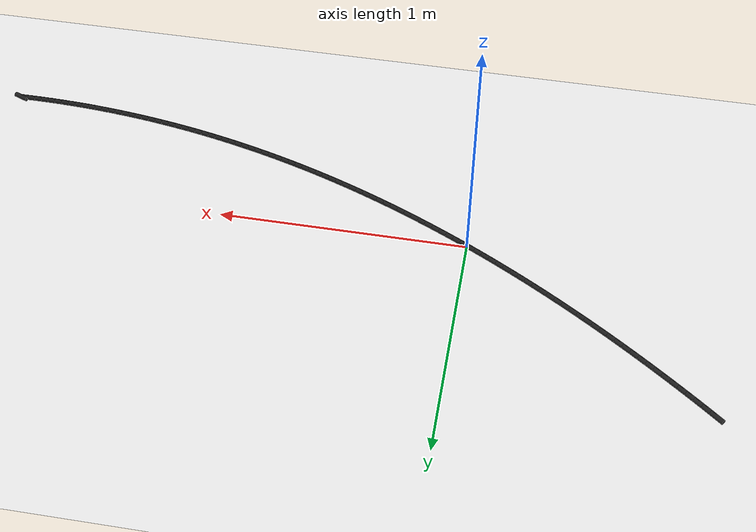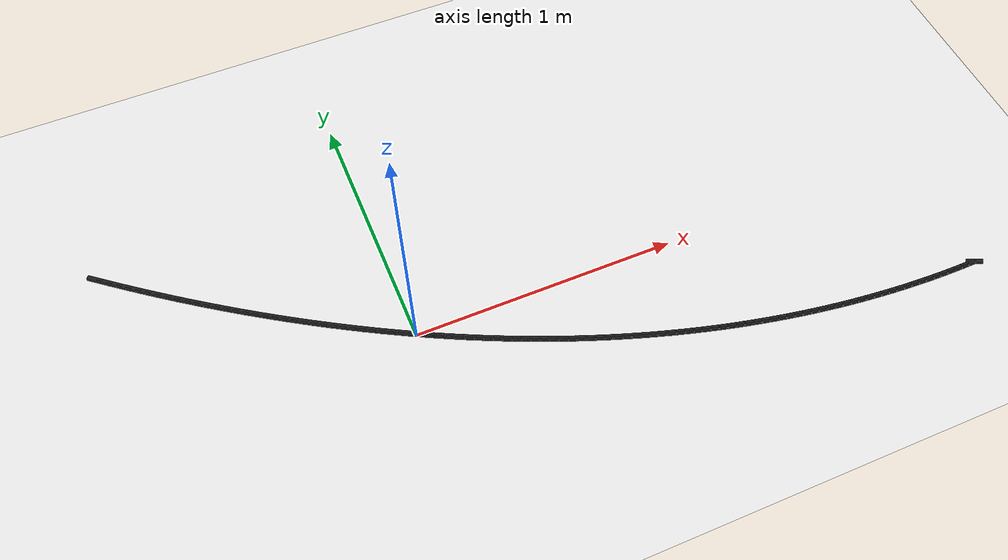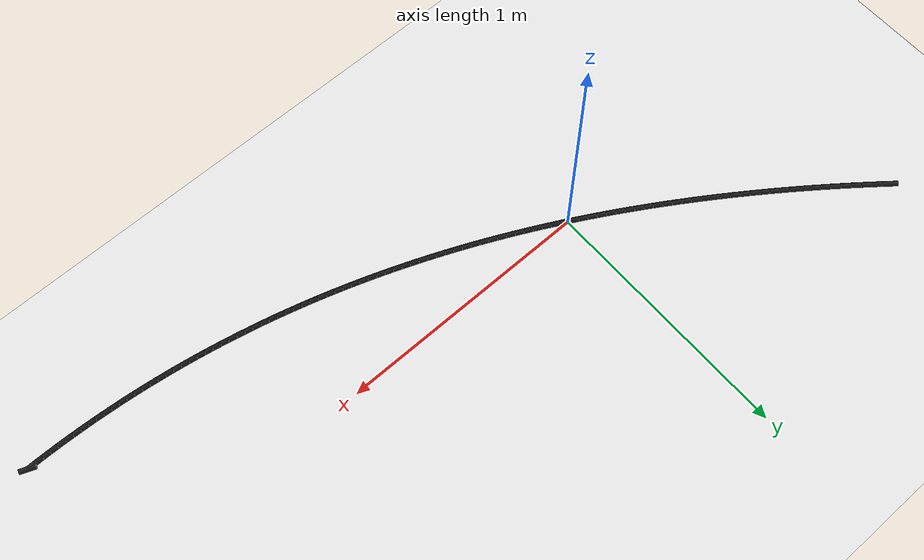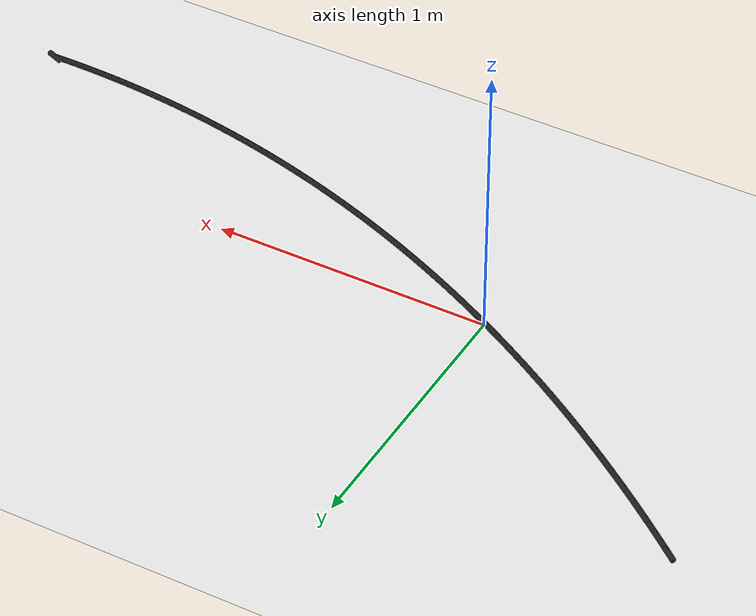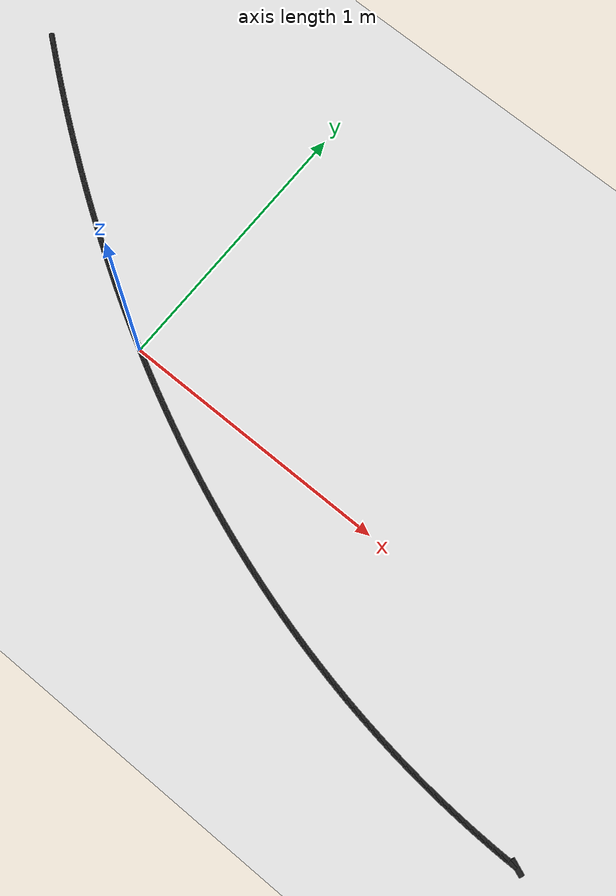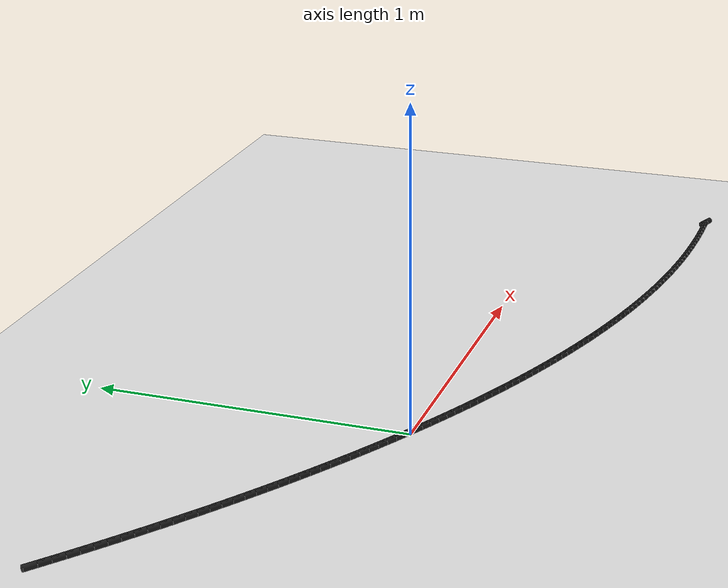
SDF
<sdf version="1.6">
 <world name="default">
  <light name="sun" type="directional">
   <pose>0 0 10 0 -0 0</pose>
   <diffuse>0.8 0.8 0.8 1</diffuse>
   <specular>0.2 0.2 0.2 1</specular>
   <attenuation>
    <range>1000</range>
    <constant>0.9</constant>
    <linear>0.01</linear>
    <quadratic>0.001</quadratic>
   </attenuation>
   <direction>-0.5 0.1 -0.9</direction>
  </light>
  <model name="ground_plane">
   <static>1</static>
   <link name="link">
    <collision name="collision">
     <geometry><plane><normal>0 0 1</normal><size>100 100</size></plane></geometry>
     <surface><friction><ode><mu>100</mu><mu2>50</mu2></ode></friction></surface>
    </collision>
    <visual name="visual">
     <cast_shadows>0</cast_shadows>
     <geometry><plane><normal>0 0 1</normal><size>100 100</size></plane></geometry>
     <material>
      <script><uri>file://media/materials/scripts/gazebo.material</uri><name>Gazebo/WhiteGlow</name></script>
     </material>
    </visual>
   </link>
  </model>
  <gravity>0 0 -9.8</gravity>
  <magnetic_field>6e-06 2.3e-05 -4.2e-05</magnetic_field>
  <atmosphere type="adiabatic"/>
  <physics name="default_physics" default="0" type="ode">
   <max_step_size>0.001</max_step_size>
   <real_time_factor>1</real_time_factor>
   <real_time_update_rate>1000</real_time_update_rate>
  </physics>
  <scene><ambient>1 1 1 1</ambient><background>1 1 1 1</background><shadows>0</shadows></scene>
  <spherical_coordinates>
   <surface_model>EARTH_WGS84</surface_model>
   <latitude_deg>0</latitude_deg>
   <longitude_deg>0</longitude_deg>
   <elevation>0</elevation>
   <heading_deg>0</heading_deg>
  </spherical_coordinates>
  <model name="line">
   <link name="link_0">
    <pose>-1.0 0.6769877856537887 0.01 0 1.57 -0.6814657097463741</pose>
    <collision name="collision">
     <geometry><cylinder><radius>0.01</radius><length>0.06</length></cylinder></geometry>
    </collision>
    <visual name="visual">
     <material>
      <script><name>Gazebo/Black</name><uri>file://media/materials/scripts/gazebo.material</uri></script>
     </material>
     <geometry><cylinder><radius>0.01</radius><length>0.06</length></cylinder></geometry>
    </visual>
   </link>
   <link name="link_1">
    <pose>-0.9696969696969697 0.6524093480892471 0.01 0 1.57 -0.6763894642166145</pose>
    <collision name="collision">
     <geometry><cylinder><radius>0.01</radius><length>0.06</length></cylinder></geometry>
    </collision>
    <visual name="visual">
     <material>
      <script><name>Gazebo/Black</name><uri>file://media/materials/scripts/gazebo.material</uri></script>
     </material>
     <geometry><cylinder><radius>0.01</radius><length>0.06</length></cylinder></geometry>
    </visual>
   </link>
   <link name="link_2">
    <pose>-0.9393939393939394 0.6280848890360238 0.01 0 1.57 -0.6712715104003601</pose>
    <collision name="collision">
     <geometry><cylinder><radius>0.01</radius><length>0.06</length></cylinder></geometry>
    </collision>
    <visual name="visual">
     <material>
      <script><name>Gazebo/Black</name><uri>file://media/materials/scripts/gazebo.material</uri></script>
     </material>
     <geometry><cylinder><radius>0.01</radius><length>0.06</length></cylinder></geometry>
    </visual>
   </link>
   <link name="link_3">
    <pose>-0.9090909090909091 0.6040144084941188 0.01 0 1.57 -0.6661116035770661</pose>
    <collision name="collision">
     <geometry><cylinder><radius>0.01</radius><length>0.06</length></cylinder></geometry>
    </collision>
    <visual name="visual">
     <material>
      <script><name>Gazebo/Black</name><uri>file://media/materials/scripts/gazebo.material</uri></script>
     </material>
     <geometry><cylinder><radius>0.01</radius><length>0.06</length></cylinder></geometry>
    </visual>
   </link>
   <link name="link_4">
    <pose>-0.8787878787878788 0.5801979064635321 0.01 0 1.57 -0.6609095039338627</pose>
    <collision name="collision">
     <geometry><cylinder><radius>0.01</radius><length>0.06</length></cylinder></geometry>
    </collision>
    <visual name="visual">
     <material>
      <script><name>Gazebo/Black</name><uri>file://media/materials/scripts/gazebo.material</uri></script>
     </material>
     <geometry><cylinder><radius>0.01</radius><length>0.06</length></cylinder></geometry>
    </visual>
   </link>
   <link name="link_5">
    <pose>-0.8484848484848485 0.5566353829442638 0.01 0 1.57 -0.655664976854781</pose>
    <collision name="collision">
     <geometry><cylinder><radius>0.01</radius><length>0.06</length></cylinder></geometry>
    </collision>
    <visual name="visual">
     <material>
      <script><name>Gazebo/Black</name><uri>file://media/materials/scripts/gazebo.material</uri></script>
     </material>
     <geometry><cylinder><radius>0.01</radius><length>0.06</length></cylinder></geometry>
    </visual>
   </link>
   <link name="link_6">
    <pose>-0.8181818181818181 0.533326837936314 0.01 0 1.57 -0.6503777932173327</pose>
    <collision name="collision">
     <geometry><cylinder><radius>0.01</radius><length>0.06</length></cylinder></geometry>
    </collision>
    <visual name="visual">
     <material>
      <script><name>Gazebo/Black</name><uri>file://media/materials/scripts/gazebo.material</uri></script>
     </material>
     <geometry><cylinder><radius>0.01</radius><length>0.06</length></cylinder></geometry>
    </visual>
   </link>
   <link name="link_7">
    <pose>-0.7878787878787878 0.5102722714396821 0.01 0 1.57 -0.6450477296964477</pose>
    <collision name="collision">
     <geometry><cylinder><radius>0.01</radius><length>0.06</length></cylinder></geometry>
    </collision>
    <visual name="visual">
     <material>
      <script><name>Gazebo/Black</name><uri>file://media/materials/scripts/gazebo.material</uri></script>
     </material>
     <geometry><cylinder><radius>0.01</radius><length>0.06</length></cylinder></geometry>
    </visual>
   </link>
   <link name="link_8">
    <pose>-0.7575757575757576 0.4874716834543691 0.01 0 1.57 -0.6396745690758942</pose>
    <collision name="collision">
     <geometry><cylinder><radius>0.01</radius><length>0.06</length></cylinder></geometry>
    </collision>
    <visual name="visual">
     <material>
      <script><name>Gazebo/Black</name><uri>file://media/materials/scripts/gazebo.material</uri></script>
     </material>
     <geometry><cylinder><radius>0.01</radius><length>0.06</length></cylinder></geometry>
    </visual>
   </link>
   <link name="link_9">
    <pose>-0.7272727272727273 0.4649250739803742 0.01 0 1.57 -0.6342581005667693</pose>
    <collision name="collision">
     <geometry><cylinder><radius>0.01</radius><length>0.06</length></cylinder></geometry>
    </collision>
    <visual name="visual">
     <material>
      <script><name>Gazebo/Black</name><uri>file://media/materials/scripts/gazebo.material</uri></script>
     </material>
     <geometry><cylinder><radius>0.01</radius><length>0.06</length></cylinder></geometry>
    </visual>
   </link>
   <link name="link_10">
    <pose>-0.696969696969697 0.44263244301769766 0.01 0 1.57 -0.6287981201333864</pose>
    <collision name="collision">
     <geometry><cylinder><radius>0.01</radius><length>0.06</length></cylinder></geometry>
    </collision>
    <visual name="visual">
     <material>
      <script><name>Gazebo/Black</name><uri>file://media/materials/scripts/gazebo.material</uri></script>
     </material>
     <geometry><cylinder><radius>0.01</radius><length>0.06</length></cylinder></geometry>
    </visual>
   </link>
   <link name="link_11">
    <pose>-0.6666666666666666 0.4205937905663393 0.01 0 1.57 -0.6232944308261517</pose>
    <collision name="collision">
     <geometry><cylinder><radius>0.01</radius><length>0.06</length></cylinder></geometry>
    </collision>
    <visual name="visual">
     <material>
      <script><name>Gazebo/Black</name><uri>file://media/materials/scripts/gazebo.material</uri></script>
     </material>
     <geometry><cylinder><radius>0.01</radius><length>0.06</length></cylinder></geometry>
    </visual>
   </link>
   <link name="link_12">
    <pose>-0.6363636363636364 0.3988091166262994 0.01 0 1.57 -0.617746843121511</pose>
    <collision name="collision">
     <geometry><cylinder><radius>0.01</radius><length>0.06</length></cylinder></geometry>
    </collision>
    <visual name="visual">
     <material>
      <script><name>Gazebo/Black</name><uri>file://media/materials/scripts/gazebo.material</uri></script>
     </material>
     <geometry><cylinder><radius>0.01</radius><length>0.06</length></cylinder></geometry>
    </visual>
   </link>
   <link name="link_13">
    <pose>-0.6060606060606061 0.377278421197578 0.01 0 1.57 -0.6121551752687135</pose>
    <collision name="collision">
     <geometry><cylinder><radius>0.01</radius><length>0.06</length></cylinder></geometry>
    </collision>
    <visual name="visual">
     <material>
      <script><name>Gazebo/Black</name><uri>file://media/materials/scripts/gazebo.material</uri></script>
     </material>
     <geometry><cylinder><radius>0.01</radius><length>0.06</length></cylinder></geometry>
    </visual>
   </link>
   <link name="link_14">
    <pose>-0.5757575757575757 0.3560017042801747 0.01 0 1.57 -0.606519253643287</pose>
    <collision name="collision">
     <geometry><cylinder><radius>0.01</radius><length>0.06</length></cylinder></geometry>
    </collision>
    <visual name="visual">
     <material>
      <script><name>Gazebo/Black</name><uri>file://media/materials/scripts/gazebo.material</uri></script>
     </material>
     <geometry><cylinder><radius>0.01</radius><length>0.06</length></cylinder></geometry>
    </visual>
   </link>
   <link name="link_15">
    <pose>-0.5454545454545454 0.33497896587408993 0.01 0 1.57 -0.6008389131070832</pose>
    <collision name="collision">
     <geometry><cylinder><radius>0.01</radius><length>0.06</length></cylinder></geometry>
    </collision>
    <visual name="visual">
     <material>
      <script><name>Gazebo/Black</name><uri>file://media/materials/scripts/gazebo.material</uri></script>
     </material>
     <geometry><cylinder><radius>0.01</radius><length>0.06</length></cylinder></geometry>
    </visual>
   </link>
   <link name="link_16">
    <pose>-0.5151515151515151 0.3142102059793234 0.01 0 1.57 -0.5951139973745827</pose>
    <collision name="collision">
     <geometry><cylinder><radius>0.01</radius><length>0.06</length></cylinder></geometry>
    </collision>
    <visual name="visual">
     <material>
      <script><name>Gazebo/Black</name><uri>file://media/materials/scripts/gazebo.material</uri></script>
     </material>
     <geometry><cylinder><radius>0.01</radius><length>0.06</length></cylinder></geometry>
    </visual>
   </link>
   <link name="link_17">
    <pose>-0.48484848484848486 0.2936954245958754 0.01 0 1.57 -0.5893443593853769</pose>
    <collision name="collision">
     <geometry><cylinder><radius>0.01</radius><length>0.06</length></cylinder></geometry>
    </collision>
    <visual name="visual">
     <material>
      <script><name>Gazebo/Black</name><uri>file://media/materials/scripts/gazebo.material</uri></script>
     </material>
     <geometry><cylinder><radius>0.01</radius><length>0.06</length></cylinder></geometry>
    </visual>
   </link>
   <link name="link_18">
    <pose>-0.4545454545454546 0.27343462172374555 0.01 0 1.57 -0.5835298616824176</pose>
    <collision name="collision">
     <geometry><cylinder><radius>0.01</radius><length>0.06</length></cylinder></geometry>
    </collision>
    <visual name="visual">
     <material>
      <script><name>Gazebo/Black</name><uri>file://media/materials/scripts/gazebo.material</uri></script>
     </material>
     <geometry><cylinder><radius>0.01</radius><length>0.06</length></cylinder></geometry>
    </visual>
   </link>
   <link name="link_19">
    <pose>-0.4242424242424242 0.2534277973629341 0.01 0 1.57 -0.5776703767959271</pose>
    <collision name="collision">
     <geometry><cylinder><radius>0.01</radius><length>0.06</length></cylinder></geometry>
    </collision>
    <visual name="visual">
     <material>
      <script><name>Gazebo/Black</name><uri>file://media/materials/scripts/gazebo.material</uri></script>
     </material>
     <geometry><cylinder><radius>0.01</radius><length>0.06</length></cylinder></geometry>
    </visual>
   </link>
   <link name="link_20">
    <pose>-0.3939393939393939 0.23367495151344098 0.01 0 1.57 -0.571765787632499</pose>
    <collision name="collision">
     <geometry><cylinder><radius>0.01</radius><length>0.06</length></cylinder></geometry>
    </collision>
    <visual name="visual">
     <material>
      <script><name>Gazebo/Black</name><uri>file://media/materials/scripts/gazebo.material</uri></script>
     </material>
     <geometry><cylinder><radius>0.01</radius><length>0.06</length></cylinder></geometry>
    </visual>
   </link>
   <link name="link_21">
    <pose>-0.36363636363636365 0.21417608417526623 0.01 0 1.57 -0.5658159878691927</pose>
    <collision name="collision">
     <geometry><cylinder><radius>0.01</radius><length>0.06</length></cylinder></geometry>
    </collision>
    <visual name="visual">
     <material>
      <script><name>Gazebo/Black</name><uri>file://media/materials/scripts/gazebo.material</uri></script>
     </material>
     <geometry><cylinder><radius>0.01</radius><length>0.06</length></cylinder></geometry>
    </visual>
   </link>
   <link name="link_22">
    <pose>-0.33333333333333326 0.19493119534840972 0.01 0 1.57 -0.5598208823521679</pose>
    <collision name="collision">
     <geometry><cylinder><radius>0.01</radius><length>0.06</length></cylinder></geometry>
    </collision>
    <visual name="visual">
     <material>
      <script><name>Gazebo/Black</name><uri>file://media/materials/scripts/gazebo.material</uri></script>
     </material>
     <geometry><cylinder><radius>0.01</radius><length>0.06</length></cylinder></geometry>
    </visual>
   </link>
   <link name="link_23">
    <pose>-0.303030303030303 0.17594028503287162 0.01 0 1.57 -0.5537803874995251</pose>
    <collision name="collision">
     <geometry><cylinder><radius>0.01</radius><length>0.06</length></cylinder></geometry>
    </collision>
    <visual name="visual">
     <material>
      <script><name>Gazebo/Black</name><uri>file://media/materials/scripts/gazebo.material</uri></script>
     </material>
     <geometry><cylinder><radius>0.01</radius><length>0.06</length></cylinder></geometry>
    </visual>
   </link>
   <link name="link_24">
    <pose>-0.2727272727272727 0.15720335322865192 0.01 0 1.57 -0.5476944317079042</pose>
    <collision name="collision">
     <geometry><cylinder><radius>0.01</radius><length>0.06</length></cylinder></geometry>
    </collision>
    <visual name="visual">
     <material>
      <script><name>Gazebo/Black</name><uri>file://media/materials/scripts/gazebo.material</uri></script>
     </material>
     <geometry><cylinder><radius>0.01</radius><length>0.06</length></cylinder></geometry>
    </visual>
   </link>
   <link name="link_25">
    <pose>-0.24242424242424243 0.13872039993575055 0.01 0 1.57 -0.5415629557623854</pose>
    <collision name="collision">
     <geometry><cylinder><radius>0.01</radius><length>0.06</length></cylinder></geometry>
    </collision>
    <visual name="visual">
     <material>
      <script><name>Gazebo/Black</name><uri>file://media/materials/scripts/gazebo.material</uri></script>
     </material>
     <geometry><cylinder><radius>0.01</radius><length>0.06</length></cylinder></geometry>
    </visual>
   </link>
   <link name="link_26">
    <pose>-0.21212121212121215 0.12049142515416755 0.01 0 1.57 -0.5353859132492357</pose>
    <collision name="collision">
     <geometry><cylinder><radius>0.01</radius><length>0.06</length></cylinder></geometry>
    </collision>
    <visual name="visual">
     <material>
      <script><name>Gazebo/Black</name><uri>file://media/materials/scripts/gazebo.material</uri></script>
     </material>
     <geometry><cylinder><radius>0.01</radius><length>0.06</length></cylinder></geometry>
    </visual>
   </link>
   <link name="link_27">
    <pose>-0.18181818181818177 0.10251642888390282 0.01 0 1.57 -0.5291632709709504</pose>
    <collision name="collision">
     <geometry><cylinder><radius>0.01</radius><length>0.06</length></cylinder></geometry>
    </collision>
    <visual name="visual">
     <material>
      <script><name>Gazebo/Black</name><uri>file://media/materials/scripts/gazebo.material</uri></script>
     </material>
     <geometry><cylinder><radius>0.01</radius><length>0.06</length></cylinder></geometry>
    </visual>
   </link>
   <link name="link_28">
    <pose>-0.1515151515151515 0.08479541112495653 0.01 0 1.57 -0.5228950093630763</pose>
    <collision name="collision">
     <geometry><cylinder><radius>0.01</radius><length>0.06</length></cylinder></geometry>
    </collision>
    <visual name="visual">
     <material>
      <script><name>Gazebo/Black</name><uri>file://media/materials/scripts/gazebo.material</uri></script>
     </material>
     <geometry><cylinder><radius>0.01</radius><length>0.06</length></cylinder></geometry>
    </visual>
   </link>
   <link name="link_29">
    <pose>-0.12121212121212122 0.06732837187732851 0.01 0 1.57 -0.5165811229121897</pose>
    <collision name="collision">
     <geometry><cylinder><radius>0.01</radius><length>0.06</length></cylinder></geometry>
    </collision>
    <visual name="visual">
     <material>
      <script><name>Gazebo/Black</name><uri>file://media/materials/scripts/gazebo.material</uri></script>
     </material>
     <geometry><cylinder><radius>0.01</radius><length>0.06</length></cylinder></geometry>
    </visual>
   </link>
   <link name="link_30">
    <pose>-0.09090909090909083 0.05011531114101881 0.01 0 1.57 -0.5102216205744743</pose>
    <collision name="collision">
     <geometry><cylinder><radius>0.01</radius><length>0.06</length></cylinder></geometry>
    </collision>
    <visual name="visual">
     <material>
      <script><name>Gazebo/Black</name><uri>file://media/materials/scripts/gazebo.material</uri></script>
     </material>
     <geometry><cylinder><radius>0.01</radius><length>0.06</length></cylinder></geometry>
    </visual>
   </link>
   <link name="link_31">
    <pose>-0.06060606060606055 0.03315622891602757 0.01 0 1.57 -0.5038165261941924</pose>
    <collision name="collision">
     <geometry><cylinder><radius>0.01</radius><length>0.06</length></cylinder></geometry>
    </collision>
    <visual name="visual">
     <material>
      <script><name>Gazebo/Black</name><uri>file://media/materials/scripts/gazebo.material</uri></script>
     </material>
     <geometry><cylinder><radius>0.01</radius><length>0.06</length></cylinder></geometry>
    </visual>
   </link>
   <link name="link_32">
    <pose>-0.030303030303030276 0.016451125202354595 0.01 0 1.57 -0.49736587892138584</pose>
    <collision name="collision">
     <geometry><cylinder><radius>0.01</radius><length>0.06</length></cylinder></geometry>
    </collision>
    <visual name="visual">
     <material>
      <script><name>Gazebo/Black</name><uri>file://media/materials/scripts/gazebo.material</uri></script>
     </material>
     <geometry><cylinder><radius>0.01</radius><length>0.06</length></cylinder></geometry>
    </visual>
   </link>
   <link name="link_33">
    <pose>0.0 -6.938893903907228e-18 0.01 0 1.57 -0.4908697336281277</pose>
    <collision name="collision">
     <geometry><cylinder><radius>0.01</radius><length>0.06</length></cylinder></geometry>
    </collision>
    <visual name="visual">
     <material>
      <script><name>Gazebo/Black</name><uri>file://media/materials/scripts/gazebo.material</uri></script>
     </material>
     <geometry><cylinder><radius>0.01</radius><length>0.06</length></cylinder></geometry>
    </visual>
   </link>
   <link name="link_34">
    <pose>0.030303030303030276 -0.01619714669103626 0.01 0 1.57 -0.4843281613225084</pose>
    <collision name="collision">
     <geometry><cylinder><radius>0.01</radius><length>0.06</length></cylinder></geometry>
    </collision>
    <visual name="visual">
     <material>
      <script><name>Gazebo/Black</name><uri>file://media/materials/scripts/gazebo.material</uri></script>
     </material>
     <geometry><cylinder><radius>0.01</radius><length>0.06</length></cylinder></geometry>
    </visual>
   </link>
   <link name="link_35">
    <pose>0.06060606060606055 -0.03214031487075414 0.01 0 1.57 -0.4777412495596345</pose>
    <collision name="collision">
     <geometry><cylinder><radius>0.01</radius><length>0.06</length></cylinder></geometry>
    </collision>
    <visual name="visual">
     <material>
      <script><name>Gazebo/Black</name><uri>file://media/materials/scripts/gazebo.material</uri></script>
     </material>
     <geometry><cylinder><radius>0.01</radius><length>0.06</length></cylinder></geometry>
    </visual>
   </link>
   <link name="link_36">
    <pose>0.09090909090909083 -0.04782950453915372 0.01 0 1.57 -0.4711091028487813</pose>
    <collision name="collision">
     <geometry><cylinder><radius>0.01</radius><length>0.06</length></cylinder></geometry>
    </collision>
    <visual name="visual">
     <material>
      <script><name>Gazebo/Black</name><uri>file://media/materials/scripts/gazebo.material</uri></script>
     </material>
     <geometry><cylinder><radius>0.01</radius><length>0.06</length></cylinder></geometry>
    </visual>
   </link>
   <link name="link_37">
    <pose>0.12121212121212133 -0.06326471569623507 0.01 0 1.57 -0.4644318430558918</pose>
    <collision name="collision">
     <geometry><cylinder><radius>0.01</radius><length>0.06</length></cylinder></geometry>
    </collision>
    <visual name="visual">
     <material>
      <script><name>Gazebo/Black</name><uri>file://media/materials/scripts/gazebo.material</uri></script>
     </material>
     <geometry><cylinder><radius>0.01</radius><length>0.06</length></cylinder></geometry>
    </visual>
   </link>
   <link name="link_38">
    <pose>0.1515151515151516 -0.07844594834199795 0.01 0 1.57 -0.4577096098005149</pose>
    <collision name="collision">
     <geometry><cylinder><radius>0.01</radius><length>0.06</length></cylinder></geometry>
    </collision>
    <visual name="visual">
     <material>
      <script><name>Gazebo/Black</name><uri>file://media/materials/scripts/gazebo.material</uri></script>
     </material>
     <geometry><cylinder><radius>0.01</radius><length>0.06</length></cylinder></geometry>
    </visual>
   </link>
   <link name="link_39">
    <pose>0.18181818181818188 -0.09337320247644254 0.01 0 1.57 -0.4509425608462761</pose>
    <collision name="collision">
     <geometry><cylinder><radius>0.01</radius><length>0.06</length></cylinder></geometry>
    </collision>
    <visual name="visual">
     <material>
      <script><name>Gazebo/Black</name><uri>file://media/materials/scripts/gazebo.material</uri></script>
     </material>
     <geometry><cylinder><radius>0.01</radius><length>0.06</length></cylinder></geometry>
    </visual>
   </link>
   <link name="link_40">
    <pose>0.21212121212121215 -0.10804647809956863 0.01 0 1.57 -0.4441308724840019</pose>
    <collision name="collision">
     <geometry><cylinder><radius>0.01</radius><length>0.06</length></cylinder></geometry>
    </collision>
    <visual name="visual">
     <material>
      <script><name>Gazebo/Black</name><uri>file://media/materials/scripts/gazebo.material</uri></script>
     </material>
     <geometry><cylinder><radius>0.01</radius><length>0.06</length></cylinder></geometry>
    </visual>
   </link>
   <link name="link_41">
    <pose>0.24242424242424243 -0.12246577521137655 0.01 0 1.57 -0.43727473990640203</pose>
    <collision name="collision">
     <geometry><cylinder><radius>0.01</radius><length>0.06</length></cylinder></geometry>
    </collision>
    <visual name="visual">
     <material>
      <script><name>Gazebo/Black</name><uri>file://media/materials/scripts/gazebo.material</uri></script>
     </material>
     <geometry><cylinder><radius>0.01</radius><length>0.06</length></cylinder></geometry>
    </visual>
   </link>
   <link name="link_42">
    <pose>0.2727272727272727 -0.136631093811866 0.01 0 1.57 -0.43037437757352404</pose>
    <collision name="collision">
     <geometry><cylinder><radius>0.01</radius><length>0.06</length></cylinder></geometry>
    </collision>
    <visual name="visual">
     <material>
      <script><name>Gazebo/Black</name><uri>file://media/materials/scripts/gazebo.material</uri></script>
     </material>
     <geometry><cylinder><radius>0.01</radius><length>0.06</length></cylinder></geometry>
    </visual>
   </link>
   <link name="link_43">
    <pose>0.303030303030303 -0.1505424339010371 0.01 0 1.57 -0.4234300195677518</pose>
    <collision name="collision">
     <geometry><cylinder><radius>0.01</radius><length>0.06</length></cylinder></geometry>
    </collision>
    <visual name="visual">
     <material>
      <script><name>Gazebo/Black</name><uri>file://media/materials/scripts/gazebo.material</uri></script>
     </material>
     <geometry><cylinder><radius>0.01</radius><length>0.06</length></cylinder></geometry>
    </visual>
   </link>
   <link name="link_44">
    <pose>0.3333333333333335 -0.16419979547889008 0.01 0 1.57 -0.4164419199374636</pose>
    <collision name="collision">
     <geometry><cylinder><radius>0.01</radius><length>0.06</length></cylinder></geometry>
    </collision>
    <visual name="visual">
     <material>
      <script><name>Gazebo/Black</name><uri>file://media/materials/scripts/gazebo.material</uri></script>
     </material>
     <geometry><cylinder><radius>0.01</radius><length>0.06</length></cylinder></geometry>
    </visual>
   </link>
   <link name="link_45">
    <pose>0.36363636363636376 -0.1776031785454245 0.01 0 1.57 -0.4094103530282681</pose>
    <collision name="collision">
     <geometry><cylinder><radius>0.01</radius><length>0.06</length></cylinder></geometry>
    </collision>
    <visual name="visual">
     <material>
      <script><name>Gazebo/Black</name><uri>file://media/materials/scripts/gazebo.material</uri></script>
     </material>
     <geometry><cylinder><radius>0.01</radius><length>0.06</length></cylinder></geometry>
    </visual>
   </link>
   <link name="link_46">
    <pose>0.39393939393939403 -0.19075258310064064 0.01 0 1.57 -0.40233561380067684</pose>
    <collision name="collision">
     <geometry><cylinder><radius>0.01</radius><length>0.06</length></cylinder></geometry>
    </collision>
    <visual name="visual">
     <material>
      <script><name>Gazebo/Black</name><uri>file://media/materials/scripts/gazebo.material</uri></script>
     </material>
     <geometry><cylinder><radius>0.01</radius><length>0.06</length></cylinder></geometry>
    </visual>
   </link>
   <link name="link_47">
    <pose>0.4242424242424243 -0.2036480091445384 0.01 0 1.57 -0.39521801813323554</pose>
    <collision name="collision">
     <geometry><cylinder><radius>0.01</radius><length>0.06</length></cylinder></geometry>
    </collision>
    <visual name="visual">
     <material>
      <script><name>Gazebo/Black</name><uri>file://media/materials/scripts/gazebo.material</uri></script>
     </material>
     <geometry><cylinder><radius>0.01</radius><length>0.06</length></cylinder></geometry>
    </visual>
   </link>
   <link name="link_48">
    <pose>0.4545454545454546 -0.21628945667711788 0.01 0 1.57 -0.38805790310992627</pose>
    <collision name="collision">
     <geometry><cylinder><radius>0.01</radius><length>0.06</length></cylinder></geometry>
    </collision>
    <visual name="visual">
     <material>
      <script><name>Gazebo/Black</name><uri>file://media/materials/scripts/gazebo.material</uri></script>
     </material>
     <geometry><cylinder><radius>0.01</radius><length>0.06</length></cylinder></geometry>
    </visual>
   </link>
   <link name="link_49">
    <pose>0.48484848484848486 -0.22867692569837894 0.01 0 1.57 -0.3808556272908193</pose>
    <collision name="collision">
     <geometry><cylinder><radius>0.01</radius><length>0.06</length></cylinder></geometry>
    </collision>
    <visual name="visual">
     <material>
      <script><name>Gazebo/Black</name><uri>file://media/materials/scripts/gazebo.material</uri></script>
     </material>
     <geometry><cylinder><radius>0.01</radius><length>0.06</length></cylinder></geometry>
    </visual>
   </link>
   <link name="link_50">
    <pose>0.5151515151515151 -0.24081041620832166 0.01 0 1.57 -0.37361157096478237</pose>
    <collision name="collision">
     <geometry><cylinder><radius>0.01</radius><length>0.06</length></cylinder></geometry>
    </collision>
    <visual name="visual">
     <material>
      <script><name>Gazebo/Black</name><uri>file://media/materials/scripts/gazebo.material</uri></script>
     </material>
     <geometry><cylinder><radius>0.01</radius><length>0.06</length></cylinder></geometry>
    </visual>
   </link>
   <link name="link_51">
    <pose>0.5454545454545454 -0.2526899282069461 0.01 0 1.57 -0.3663261363832077</pose>
    <collision name="collision">
     <geometry><cylinder><radius>0.01</radius><length>0.06</length></cylinder></geometry>
    </collision>
    <visual name="visual">
     <material>
      <script><name>Gazebo/Black</name><uri>file://media/materials/scripts/gazebo.material</uri></script>
     </material>
     <geometry><cylinder><radius>0.01</radius><length>0.06</length></cylinder></geometry>
    </visual>
   </link>
   <link name="link_52">
    <pose>0.5757575757575757 -0.2643154616942521 0.01 0 1.57 -0.3589997479736315</pose>
    <collision name="collision">
     <geometry><cylinder><radius>0.01</radius><length>0.06</length></cylinder></geometry>
    </collision>
    <visual name="visual">
     <material>
      <script><name>Gazebo/Black</name><uri>file://media/materials/scripts/gazebo.material</uri></script>
     </material>
     <geometry><cylinder><radius>0.01</radius><length>0.06</length></cylinder></geometry>
    </visual>
   </link>
   <link name="link_53">
    <pose>0.6060606060606062 -0.27568701667023987 0.01 0 1.57 -0.3516328525321008</pose>
    <collision name="collision">
     <geometry><cylinder><radius>0.01</radius><length>0.06</length></cylinder></geometry>
    </collision>
    <visual name="visual">
     <material>
      <script><name>Gazebo/Black</name><uri>file://media/materials/scripts/gazebo.material</uri></script>
     </material>
     <geometry><cylinder><radius>0.01</radius><length>0.06</length></cylinder></geometry>
    </visual>
   </link>
   <link name="link_54">
    <pose>0.6363636363636365 -0.28680459313490925 0.01 0 1.57 -0.3442259193932784</pose>
    <collision name="collision">
     <geometry><cylinder><radius>0.01</radius><length>0.06</length></cylinder></geometry>
    </collision>
    <visual name="visual">
     <material>
      <script><name>Gazebo/Black</name><uri>file://media/materials/scripts/gazebo.material</uri></script>
     </material>
     <geometry><cylinder><radius>0.01</radius><length>0.06</length></cylinder></geometry>
    </visual>
   </link>
   <link name="link_55">
    <pose>0.6666666666666667 -0.29766819108826026 0.01 0 1.57 -0.33677944057714293</pose>
    <collision name="collision">
     <geometry><cylinder><radius>0.01</radius><length>0.06</length></cylinder></geometry>
    </collision>
    <visual name="visual">
     <material>
      <script><name>Gazebo/Black</name><uri>file://media/materials/scripts/gazebo.material</uri></script>
     </material>
     <geometry><cylinder><radius>0.01</radius><length>0.06</length></cylinder></geometry>
    </visual>
   </link>
   <link name="link_56">
    <pose>0.696969696969697 -0.3082778105302929 0.01 0 1.57 -0.32929393091126247</pose>
    <collision name="collision">
     <geometry><cylinder><radius>0.01</radius><length>0.06</length></cylinder></geometry>
    </collision>
    <visual name="visual">
     <material>
      <script><name>Gazebo/Black</name><uri>file://media/materials/scripts/gazebo.material</uri></script>
     </material>
     <geometry><cylinder><radius>0.01</radius><length>0.06</length></cylinder></geometry>
    </visual>
   </link>
   <link name="link_57">
    <pose>0.7272727272727273 -0.3186334514610073 0.01 0 1.57 -0.3217699281275875</pose>
    <collision name="collision">
     <geometry><cylinder><radius>0.01</radius><length>0.06</length></cylinder></geometry>
    </collision>
    <visual name="visual">
     <material>
      <script><name>Gazebo/Black</name><uri>file://media/materials/scripts/gazebo.material</uri></script>
     </material>
     <geometry><cylinder><radius>0.01</radius><length>0.06</length></cylinder></geometry>
    </visual>
   </link>
   <link name="link_58">
    <pose>0.7575757575757576 -0.32873511388040333 0.01 0 1.57 -0.31420799293280294</pose>
    <collision name="collision">
     <geometry><cylinder><radius>0.01</radius><length>0.06</length></cylinder></geometry>
    </collision>
    <visual name="visual">
     <material>
      <script><name>Gazebo/Black</name><uri>file://media/materials/scripts/gazebo.material</uri></script>
     </material>
     <geometry><cylinder><radius>0.01</radius><length>0.06</length></cylinder></geometry>
    </visual>
   </link>
   <link name="link_59">
    <pose>0.7878787878787878 -0.3385827977884809 0.01 0 1.57 -0.3066087090512291</pose>
    <collision name="collision">
     <geometry><cylinder><radius>0.01</radius><length>0.06</length></cylinder></geometry>
    </collision>
    <visual name="visual">
     <material>
      <script><name>Gazebo/Black</name><uri>file://media/materials/scripts/gazebo.material</uri></script>
     </material>
     <geometry><cylinder><radius>0.01</radius><length>0.06</length></cylinder></geometry>
    </visual>
   </link>
   <link name="link_60">
    <pose>0.8181818181818183 -0.34817650318524024 0.01 0 1.57 -0.29897268323932075</pose>
    <collision name="collision">
     <geometry><cylinder><radius>0.01</radius><length>0.06</length></cylinder></geometry>
    </collision>
    <visual name="visual">
     <material>
      <script><name>Gazebo/Black</name><uri>file://media/materials/scripts/gazebo.material</uri></script>
     </material>
     <geometry><cylinder><radius>0.01</radius><length>0.06</length></cylinder></geometry>
    </visual>
   </link>
   <link name="link_61">
    <pose>0.8484848484848486 -0.3575162300706811 0.01 0 1.57 -0.2913005452709802</pose>
    <collision name="collision">
     <geometry><cylinder><radius>0.01</radius><length>0.06</length></cylinder></geometry>
    </collision>
    <visual name="visual">
     <material>
      <script><name>Gazebo/Black</name><uri>file://media/materials/scripts/gazebo.material</uri></script>
     </material>
     <geometry><cylinder><radius>0.01</radius><length>0.06</length></cylinder></geometry>
    </visual>
   </link>
   <link name="link_62">
    <pose>0.8787878787878789 -0.36660197844480386 0.01 0 1.57 -0.28359294789267686</pose>
    <collision name="collision">
     <geometry><cylinder><radius>0.01</radius><length>0.06</length></cylinder></geometry>
    </collision>
    <visual name="visual">
     <material>
      <script><name>Gazebo/Black</name><uri>file://media/materials/scripts/gazebo.material</uri></script>
     </material>
     <geometry><cylinder><radius>0.01</radius><length>0.06</length></cylinder></geometry>
    </visual>
   </link>
   <link name="link_63">
    <pose>0.9090909090909092 -0.375433748307608 0.01 0 1.57 -0.2758505667478179</pose>
    <collision name="collision">
     <geometry><cylinder><radius>0.01</radius><length>0.06</length></cylinder></geometry>
    </collision>
    <visual name="visual">
     <material>
      <script><name>Gazebo/Black</name><uri>file://media/materials/scripts/gazebo.material</uri></script>
     </material>
     <geometry><cylinder><radius>0.01</radius><length>0.06</length></cylinder></geometry>
    </visual>
   </link>
   <link name="link_64">
    <pose>0.9393939393939394 -0.3840115396590939 0.01 0 1.57 -0.26807410026935125</pose>
    <collision name="collision">
     <geometry><cylinder><radius>0.01</radius><length>0.06</length></cylinder></geometry>
    </collision>
    <visual name="visual">
     <material>
      <script><name>Gazebo/Black</name><uri>file://media/materials/scripts/gazebo.material</uri></script>
     </material>
     <geometry><cylinder><radius>0.01</radius><length>0.06</length></cylinder></geometry>
    </visual>
   </link>
   <link name="link_65">
    <pose>0.9696969696969697 -0.39233535249926155 0.01 0 1.57 -0.26026426954020715</pose>
    <collision name="collision">
     <geometry><cylinder><radius>0.01</radius><length>0.06</length></cylinder></geometry>
    </collision>
    <visual name="visual">
     <material>
      <script><name>Gazebo/Black</name><uri>file://media/materials/scripts/gazebo.material</uri></script>
     </material>
     <geometry><cylinder><radius>0.01</radius><length>0.06</length></cylinder></geometry>
    </visual>
   </link>
   <link name="link_66">
    <pose>1.0 -0.40040518682811066 0.01 0 1.57 -0.25242181812085496</pose>
    <collision name="collision">
     <geometry><cylinder><radius>0.01</radius><length>0.06</length></cylinder></geometry>
    </collision>
    <visual name="visual">
     <material>
      <script><name>Gazebo/Black</name><uri>file://media/materials/scripts/gazebo.material</uri></script>
     </material>
     <geometry><cylinder><radius>0.01</radius><length>0.06</length></cylinder></geometry>
    </visual>
   </link>
   <link name="link_67">
    <pose>1.0303030303030303 -0.4082210426456415 0.01 0 1.57 -0.24454751184338783</pose>
    <collision name="collision">
     <geometry><cylinder><radius>0.01</radius><length>0.06</length></cylinder></geometry>
    </collision>
    <visual name="visual">
     <material>
      <script><name>Gazebo/Black</name><uri>file://media/materials/scripts/gazebo.material</uri></script>
     </material>
     <geometry><cylinder><radius>0.01</radius><length>0.06</length></cylinder></geometry>
    </visual>
   </link>
   <link name="link_68">
    <pose>1.0606060606060606 -0.4157829199518541 0.01 0 1.57 -0.23664213857184008</pose>
    <collision name="collision">
     <geometry><cylinder><radius>0.01</radius><length>0.06</length></cylinder></geometry>
    </collision>
    <visual name="visual">
     <material>
      <script><name>Gazebo/Black</name><uri>file://media/materials/scripts/gazebo.material</uri></script>
     </material>
     <geometry><cylinder><radius>0.01</radius><length>0.06</length></cylinder></geometry>
    </visual>
   </link>
   <link name="link_69">
    <pose>1.0909090909090908 -0.42309081874674825 0.01 0 1.57 -0.22870650792828306</pose>
    <collision name="collision">
     <geometry><cylinder><radius>0.01</radius><length>0.06</length></cylinder></geometry>
    </collision>
    <visual name="visual">
     <material>
      <script><name>Gazebo/Black</name><uri>file://media/materials/scripts/gazebo.material</uri></script>
     </material>
     <geometry><cylinder><radius>0.01</radius><length>0.06</length></cylinder></geometry>
    </visual>
   </link>
   <link name="link_70">
    <pose>1.121212121212121 -0.4301447390303241 0.01 0 1.57 -0.22074145098437647</pose>
    <collision name="collision">
     <geometry><cylinder><radius>0.01</radius><length>0.06</length></cylinder></geometry>
    </collision>
    <visual name="visual">
     <material>
      <script><name>Gazebo/Black</name><uri>file://media/materials/scripts/gazebo.material</uri></script>
     </material>
     <geometry><cylinder><radius>0.01</radius><length>0.06</length></cylinder></geometry>
    </visual>
   </link>
   <link name="link_71">
    <pose>1.1515151515151514 -0.43694468080258164 0.01 0 1.57 -0.21274781991828107</pose>
    <collision name="collision">
     <geometry><cylinder><radius>0.01</radius><length>0.06</length></cylinder></geometry>
    </collision>
    <visual name="visual">
     <material>
      <script><name>Gazebo/Black</name><uri>file://media/materials/scripts/gazebo.material</uri></script>
     </material>
     <geometry><cylinder><radius>0.01</radius><length>0.06</length></cylinder></geometry>
    </visual>
   </link>
   <link name="link_72">
    <pose>1.1818181818181817 -0.4434906440635208 0.01 0 1.57 -0.20472648763679405</pose>
    <collision name="collision">
     <geometry><cylinder><radius>0.01</radius><length>0.06</length></cylinder></geometry>
    </collision>
    <visual name="visual">
     <material>
      <script><name>Gazebo/Black</name><uri>file://media/materials/scripts/gazebo.material</uri></script>
     </material>
     <geometry><cylinder><radius>0.01</radius><length>0.06</length></cylinder></geometry>
    </visual>
   </link>
   <link name="link_73">
    <pose>1.2121212121212124 -0.4497826288131417 0.01 0 1.57 -0.19667834736265363</pose>
    <collision name="collision">
     <geometry><cylinder><radius>0.01</radius><length>0.06</length></cylinder></geometry>
    </collision>
    <visual name="visual">
     <material>
      <script><name>Gazebo/Black</name><uri>file://media/materials/scripts/gazebo.material</uri></script>
     </material>
     <geometry><cylinder><radius>0.01</radius><length>0.06</length></cylinder></geometry>
    </visual>
   </link>
   <link name="link_74">
    <pose>1.2424242424242427 -0.4558206350514441 0.01 0 1.57 -0.18860431218719592</pose>
    <collision name="collision">
     <geometry><cylinder><radius>0.01</radius><length>0.06</length></cylinder></geometry>
    </collision>
    <visual name="visual">
     <material>
      <script><name>Gazebo/Black</name><uri>file://media/materials/scripts/gazebo.material</uri></script>
     </material>
     <geometry><cylinder><radius>0.01</radius><length>0.06</length></cylinder></geometry>
    </visual>
   </link>
   <link name="link_75">
    <pose>1.272727272727273 -0.4616046627784282 0.01 0 1.57 -0.18050531458848423</pose>
    <collision name="collision">
     <geometry><cylinder><radius>0.01</radius><length>0.06</length></cylinder></geometry>
    </collision>
    <visual name="visual">
     <material>
      <script><name>Gazebo/Black</name><uri>file://media/materials/scripts/gazebo.material</uri></script>
     </material>
     <geometry><cylinder><radius>0.01</radius><length>0.06</length></cylinder></geometry>
    </visual>
   </link>
   <link name="link_76">
    <pose>1.3030303030303032 -0.46713471199409395 0.01 0 1.57 -0.17238230591527434</pose>
    <collision name="collision">
     <geometry><cylinder><radius>0.01</radius><length>0.06</length></cylinder></geometry>
    </collision>
    <visual name="visual">
     <material>
      <script><name>Gazebo/Black</name><uri>file://media/materials/scripts/gazebo.material</uri></script>
     </material>
     <geometry><cylinder><radius>0.01</radius><length>0.06</length></cylinder></geometry>
    </visual>
   </link>
   <link name="link_77">
    <pose>1.3333333333333335 -0.4724107826984414 0.01 0 1.57 -0.16423625583715973</pose>
    <collision name="collision">
     <geometry><cylinder><radius>0.01</radius><length>0.06</length></cylinder></geometry>
    </collision>
    <visual name="visual">
     <material>
      <script><name>Gazebo/Black</name><uri>file://media/materials/scripts/gazebo.material</uri></script>
     </material>
     <geometry><cylinder><radius>0.01</radius><length>0.06</length></cylinder></geometry>
    </visual>
   </link>
   <link name="link_78">
    <pose>1.3636363636363638 -0.47743287489147046 0.01 0 1.57 -0.15606815176146763</pose>
    <collision name="collision">
     <geometry><cylinder><radius>0.01</radius><length>0.06</length></cylinder></geometry>
    </collision>
    <visual name="visual">
     <material>
      <script><name>Gazebo/Black</name><uri>file://media/materials/scripts/gazebo.material</uri></script>
     </material>
     <geometry><cylinder><radius>0.01</radius><length>0.06</length></cylinder></geometry>
    </visual>
   </link>
   <link name="link_79">
    <pose>1.393939393939394 -0.4822009885731812 0.01 0 1.57 -0.14787899821746536</pose>
    <collision name="collision">
     <geometry><cylinder><radius>0.01</radius><length>0.06</length></cylinder></geometry>
    </collision>
    <visual name="visual">
     <material>
      <script><name>Gazebo/Black</name><uri>file://media/materials/scripts/gazebo.material</uri></script>
     </material>
     <geometry><cylinder><radius>0.01</radius><length>0.06</length></cylinder></geometry>
    </visual>
   </link>
   <link name="link_80">
    <pose>1.4242424242424243 -0.4867151237435736 0.01 0 1.57 -0.13966981620865862</pose>
    <collision name="collision">
     <geometry><cylinder><radius>0.01</radius><length>0.06</length></cylinder></geometry>
    </collision>
    <visual name="visual">
     <material>
      <script><name>Gazebo/Black</name><uri>file://media/materials/scripts/gazebo.material</uri></script>
     </material>
     <geometry><cylinder><radius>0.01</radius><length>0.06</length></cylinder></geometry>
    </visual>
   </link>
   <link name="link_81">
    <pose>1.4545454545454546 -0.4909752804026477 0.01 0 1.57 -0.13144164253395535</pose>
    <collision name="collision">
     <geometry><cylinder><radius>0.01</radius><length>0.06</length></cylinder></geometry>
    </collision>
    <visual name="visual">
     <material>
      <script><name>Gazebo/Black</name><uri>file://media/materials/scripts/gazebo.material</uri></script>
     </material>
     <geometry><cylinder><radius>0.01</radius><length>0.06</length></cylinder></geometry>
    </visual>
   </link>
   <link name="link_82">
    <pose>1.4848484848484849 -0.49498145855040343 0.01 0 1.57 -0.12319552907868594</pose>
    <collision name="collision">
     <geometry><cylinder><radius>0.01</radius><length>0.06</length></cylinder></geometry>
    </collision>
    <visual name="visual">
     <material>
      <script><name>Gazebo/Black</name><uri>file://media/materials/scripts/gazebo.material</uri></script>
     </material>
     <geometry><cylinder><radius>0.01</radius><length>0.06</length></cylinder></geometry>
    </visual>
   </link>
   <link name="link_83">
    <pose>1.5151515151515151 -0.4987336581868408 0.01 0 1.57 -0.11493254207647043</pose>
    <collision name="collision">
     <geometry><cylinder><radius>0.01</radius><length>0.06</length></cylinder></geometry>
    </collision>
    <visual name="visual">
     <material>
      <script><name>Gazebo/Black</name><uri>file://media/materials/scripts/gazebo.material</uri></script>
     </material>
     <geometry><cylinder><radius>0.01</radius><length>0.06</length></cylinder></geometry>
    </visual>
   </link>
   <link name="link_84">
    <pose>1.5454545454545454 -0.5022318793119597 0.01 0 1.57 -0.10665376134313119</pose>
    <collision name="collision">
     <geometry><cylinder><radius>0.01</radius><length>0.06</length></cylinder></geometry>
    </collision>
    <visual name="visual">
     <material>
      <script><name>Gazebo/Black</name><uri>file://media/materials/scripts/gazebo.material</uri></script>
     </material>
     <geometry><cylinder><radius>0.01</radius><length>0.06</length></cylinder></geometry>
    </visual>
   </link>
   <link name="link_85">
    <pose>1.5757575757575757 -0.5054761219257604 0.01 0 1.57 -0.09836027948378041</pose>
    <collision name="collision">
     <geometry><cylinder><radius>0.01</radius><length>0.06</length></cylinder></geometry>
    </collision>
    <visual name="visual">
     <material>
      <script><name>Gazebo/Black</name><uri>file://media/materials/scripts/gazebo.material</uri></script>
     </material>
     <geometry><cylinder><radius>0.01</radius><length>0.06</length></cylinder></geometry>
    </visual>
   </link>
   <link name="link_86">
    <pose>1.606060606060606 -0.5084663860282427 0.01 0 1.57 -0.09005320107462739</pose>
    <collision name="collision">
     <geometry><cylinder><radius>0.01</radius><length>0.06</length></cylinder></geometry>
    </collision>
    <visual name="visual">
     <material>
      <script><name>Gazebo/Black</name><uri>file://media/materials/scripts/gazebo.material</uri></script>
     </material>
     <geometry><cylinder><radius>0.01</radius><length>0.06</length></cylinder></geometry>
    </visual>
   </link>
   <link name="link_87">
    <pose>1.6363636363636362 -0.5112026716194067 0.01 0 1.57 -0.08173364182065844</pose>
    <collision name="collision">
     <geometry><cylinder><radius>0.01</radius><length>0.06</length></cylinder></geometry>
    </collision>
    <visual name="visual">
     <material>
      <script><name>Gazebo/Black</name><uri>file://media/materials/scripts/gazebo.material</uri></script>
     </material>
     <geometry><cylinder><radius>0.01</radius><length>0.06</length></cylinder></geometry>
    </visual>
   </link>
   <link name="link_88">
    <pose>1.666666666666667 -0.5136849786992523 0.01 0 1.57 -0.0734027276909729</pose>
    <collision name="collision">
     <geometry><cylinder><radius>0.01</radius><length>0.06</length></cylinder></geometry>
    </collision>
    <visual name="visual">
     <material>
      <script><name>Gazebo/Black</name><uri>file://media/materials/scripts/gazebo.material</uri></script>
     </material>
     <geometry><cylinder><radius>0.01</radius><length>0.06</length></cylinder></geometry>
    </visual>
   </link>
   <link name="link_89">
    <pose>1.6969696969696972 -0.5159133072677796 0.01 0 1.57 -0.06506159403317698</pose>
    <collision name="collision">
     <geometry><cylinder><radius>0.01</radius><length>0.06</length></cylinder></geometry>
    </collision>
    <visual name="visual">
     <material>
      <script><name>Gazebo/Black</name><uri>file://media/materials/scripts/gazebo.material</uri></script>
     </material>
     <geometry><cylinder><radius>0.01</radius><length>0.06</length></cylinder></geometry>
    </visual>
   </link>
   <link name="link_90">
    <pose>1.7272727272727275 -0.5178876573249885 0.01 0 1.57 -0.05671138466863964</pose>
    <collision name="collision">
     <geometry><cylinder><radius>0.01</radius><length>0.06</length></cylinder></geometry>
    </collision>
    <visual name="visual">
     <material>
      <script><name>Gazebo/Black</name><uri>file://media/materials/scripts/gazebo.material</uri></script>
     </material>
     <geometry><cylinder><radius>0.01</radius><length>0.06</length></cylinder></geometry>
    </visual>
   </link>
   <link name="link_91">
    <pose>1.7575757575757578 -0.5196080288708791 0.01 0 1.57 -0.0483532509702993</pose>
    <collision name="collision">
     <geometry><cylinder><radius>0.01</radius><length>0.06</length></cylinder></geometry>
    </collision>
    <visual name="visual">
     <material>
      <script><name>Gazebo/Black</name><uri>file://media/materials/scripts/gazebo.material</uri></script>
     </material>
     <geometry><cylinder><radius>0.01</radius><length>0.06</length></cylinder></geometry>
    </visual>
   </link>
   <link name="link_92">
    <pose>1.787878787878788 -0.5210744219054514 0.01 0 1.57 -0.03998835092484561</pose>
    <collision name="collision">
     <geometry><cylinder><radius>0.01</radius><length>0.06</length></cylinder></geometry>
    </collision>
    <visual name="visual">
     <material>
      <script><name>Gazebo/Black</name><uri>file://media/materials/scripts/gazebo.material</uri></script>
     </material>
     <geometry><cylinder><radius>0.01</radius><length>0.06</length></cylinder></geometry>
    </visual>
   </link>
   <link name="link_93">
    <pose>1.8181818181818183 -0.5222868364287053 0.01 0 1.57 -0.03161784818120131</pose>
    <collision name="collision">
     <geometry><cylinder><radius>0.01</radius><length>0.06</length></cylinder></geometry>
    </collision>
    <visual name="visual">
     <material>
      <script><name>Gazebo/Black</name><uri>file://media/materials/scripts/gazebo.material</uri></script>
     </material>
     <geometry><cylinder><radius>0.01</radius><length>0.06</length></cylinder></geometry>
    </visual>
   </link>
   <link name="link_94">
    <pose>1.8484848484848486 -0.5232452724406409 0.01 0 1.57 -0.023242911087159413</pose>
    <collision name="collision">
     <geometry><cylinder><radius>0.01</radius><length>0.06</length></cylinder></geometry>
    </collision>
    <visual name="visual">
     <material>
      <script><name>Gazebo/Black</name><uri>file://media/materials/scripts/gazebo.material</uri></script>
     </material>
     <geometry><cylinder><radius>0.01</radius><length>0.06</length></cylinder></geometry>
    </visual>
   </link>
   <link name="link_95">
    <pose>1.878787878787879 -0.523949729941258 0.01 0 1.57 -0.01486471171624025</pose>
    <collision name="collision">
     <geometry><cylinder><radius>0.01</radius><length>0.06</length></cylinder></geometry>
    </collision>
    <visual name="visual">
     <material>
      <script><name>Gazebo/Black</name><uri>file://media/materials/scripts/gazebo.material</uri></script>
     </material>
     <geometry><cylinder><radius>0.01</radius><length>0.06</length></cylinder></geometry>
    </visual>
   </link>
   <link name="link_96">
    <pose>1.9090909090909092 -0.524400208930557 0.01 0 1.57 -0.0064844248866334445</pose>
    <collision name="collision">
     <geometry><cylinder><radius>0.01</radius><length>0.06</length></cylinder></geometry>
    </collision>
    <visual name="visual">
     <material>
      <script><name>Gazebo/Black</name><uri>file://media/materials/scripts/gazebo.material</uri></script>
     </material>
     <geometry><cylinder><radius>0.01</radius><length>0.06</length></cylinder></geometry>
    </visual>
   </link>
   <link name="link_97">
    <pose>1.9393939393939394 -0.5245967094085375 0.01 0 1.57 0.0018967728254440125</pose>
    <collision name="collision">
     <geometry><cylinder><radius>0.01</radius><length>0.06</length></cylinder></geometry>
    </collision>
    <visual name="visual">
     <material>
      <script><name>Gazebo/Black</name><uri>file://media/materials/scripts/gazebo.material</uri></script>
     </material>
     <geometry><cylinder><radius>0.01</radius><length>0.06</length></cylinder></geometry>
    </visual>
   </link>
   <link name="link_98">
    <pose>1.9696969696969697 -0.5245392313751996 0.01 0 1.57 0.010277704076286294</pose>
    <collision name="collision">
     <geometry><cylinder><radius>0.01</radius><length>0.06</length></cylinder></geometry>
    </collision>
    <visual name="visual">
     <material>
      <script><name>Gazebo/Black</name><uri>file://media/materials/scripts/gazebo.material</uri></script>
     </material>
     <geometry><cylinder><radius>0.01</radius><length>0.06</length></cylinder></geometry>
    </visual>
   </link>
   <link name="link_99">
    <pose>2.0 -0.5242277748305435 0.01 0 1.57 -0.38085562729081973</pose>
    <collision name="collision">
     <geometry><cylinder><radius>0.01</radius><length>0.06</length></cylinder></geometry>
    </collision>
    <visual name="visual">
     <material>
      <script><name>Gazebo/Black</name><uri>file://media/materials/scripts/gazebo.material</uri></script>
     </material>
     <geometry><cylinder><radius>0.01</radius><length>0.06</length></cylinder></geometry>
    </visual>
   </link>
  </model>
 </world>
</sdf>
